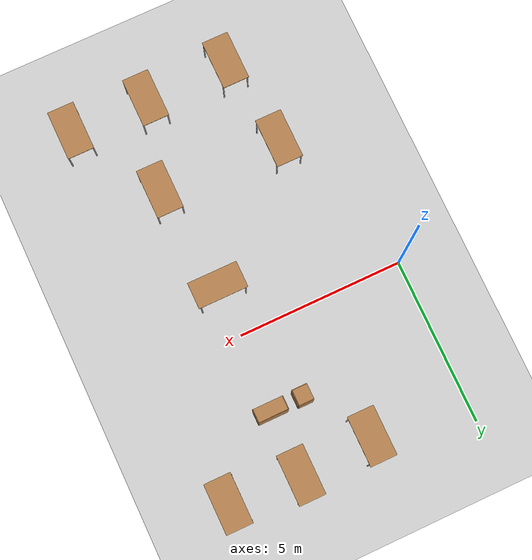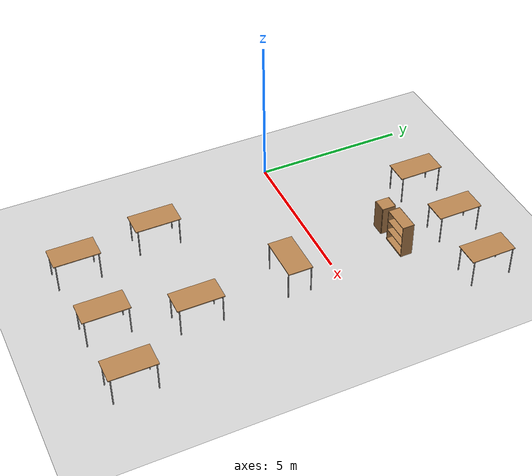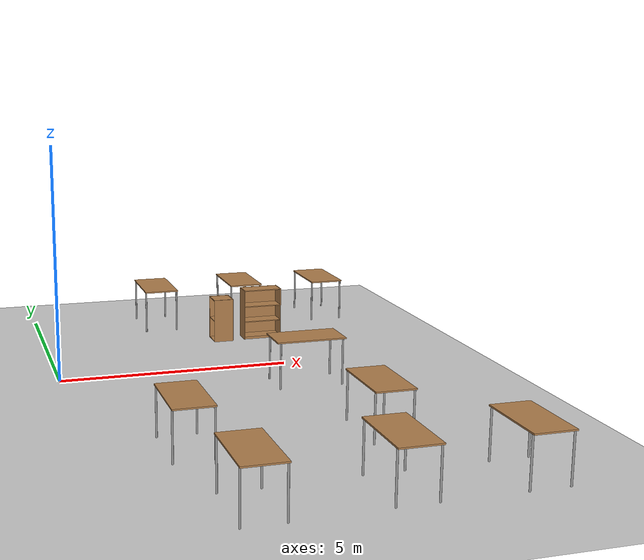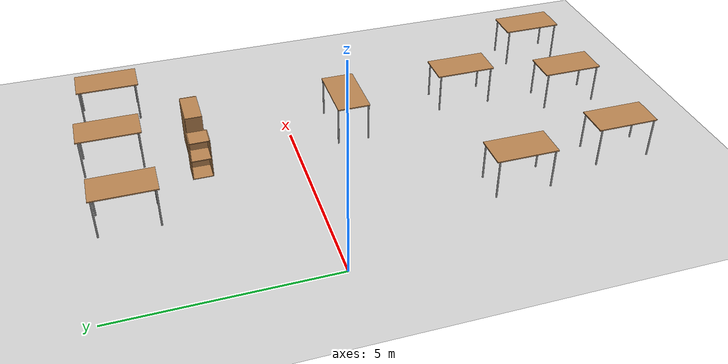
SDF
<sdf version="1.6">
 <world name="default">
  <model name="ground_plane">
   <static>1</static>
   <link name="link">
    <collision name="collision">
     <geometry><plane><normal>0 0 1</normal><size>100 100</size></plane></geometry>
     <surface>
      <contact><collide_bitmask>65535</collide_bitmask></contact>
      <friction><ode><mu>100</mu><mu2>50</mu2></ode></friction>
     </surface>
    </collision>
    <visual name="visual">
     <cast_shadows>0</cast_shadows>
     <geometry><plane><normal>0 0 1</normal><size>100 100</size></plane></geometry>
     <material>
      <script><uri>file://media/materials/scripts/gazebo.material</uri><name>Gazebo/Grey</name></script>
     </material>
    </visual>
   </link>
  </model>
  <model name="table_clone_2">
   <static>1</static>
   <link name="link">
    <collision name="surface">
     <pose>0 0 1 0 -0 0</pose>
     <geometry><box><size>1.5 0.8 0.03</size></box></geometry>
     <surface><friction><ode><mu>0.6</mu><mu2>0.6</mu2></ode></friction></surface>
    </collision>
    <visual name="visual1">
     <pose>0 0 1 0 -0 0</pose>
     <geometry><box><size>1.5 0.8 0.03</size></box></geometry>
     <material>
      <script><uri>file://media/materials/scripts/gazebo.material</uri><name>Gazebo/Wood</name></script>
     </material>
    </visual>
    <collision name="front_left_leg">
     <pose>0.68 0.38 0.5 0 -0 0</pose>
     <geometry><cylinder><radius>0.02</radius><length>1</length></cylinder></geometry>
    </collision>
    <visual name="front_left_leg">
     <pose>0.68 0.38 0.5 0 -0 0</pose>
     <geometry><cylinder><radius>0.02</radius><length>1</length></cylinder></geometry>
     <material>
      <script><uri>file://media/materials/scripts/gazebo.material</uri><name>Gazebo/Grey</name></script>
     </material>
    </visual>
    <collision name="front_right_leg">
     <pose>0.68 -0.38 0.5 0 -0 0</pose>
     <geometry><cylinder><radius>0.02</radius><length>1</length></cylinder></geometry>
    </collision>
    <visual name="front_right_leg">
     <pose>0.68 -0.38 0.5 0 -0 0</pose>
     <geometry><cylinder><radius>0.02</radius><length>1</length></cylinder></geometry>
     <material>
      <script><uri>file://media/materials/scripts/gazebo.material</uri><name>Gazebo/Grey</name></script>
     </material>
    </visual>
    <collision name="back_right_leg">
     <pose>-0.68 -0.38 0.5 0 -0 0</pose>
     <geometry><cylinder><radius>0.02</radius><length>1</length></cylinder></geometry>
    </collision>
    <visual name="back_right_leg">
     <pose>-0.68 -0.38 0.5 0 -0 0</pose>
     <geometry><cylinder><radius>0.02</radius><length>1</length></cylinder></geometry>
     <material>
      <script><uri>file://media/materials/scripts/gazebo.material</uri><name>Gazebo/Grey</name></script>
     </material>
    </visual>
    <collision name="back_left_leg">
     <pose>-0.68 0.38 0.5 0 -0 0</pose>
     <geometry><cylinder><radius>0.02</radius><length>1</length></cylinder></geometry>
    </collision>
    <visual name="back_left_leg">
     <pose>-0.68 0.38 0.5 0 -0 0</pose>
     <geometry><cylinder><radius>0.02</radius><length>1</length></cylinder></geometry>
     <material>
      <script><uri>file://media/materials/scripts/gazebo.material</uri><name>Gazebo/Grey</name></script>
     </material>
    </visual>
   </link>
   <pose>5.02257 -1.43845 0 0 -0 0</pose>
  </model>
  <model name="cabinet_clone">
   <static>1</static>
   <link name="cabinet_bottom_plate">
    <inertial>
     <pose>0 0 -1 0 -0 0</pose>
     <inertia><ixx>2.05</ixx><ixy>0</ixy><ixz>0</ixz><iyy>2.05</iyy><iyz>0</iyz><izz>2.05</izz></inertia>
     <mass>25</mass>
    </inertial>
    <collision name="cabinet_bottom_plate_geom">
     <pose>0 0 0.01 0 -0 0</pose>
     <geometry><box><size>0.45 0.45 0.02</size></box></geometry>
    </collision>
    <visual name="cabinet_bottom_plate_geom_visual">
     <pose>0 0 0.01 0 -0 0</pose>
     <geometry><box><size>0.45 0.45 0.02</size></box></geometry>
     <material>
      <script><uri>file://media/materials/scripts/gazebo.material</uri><name>Gazebo/Wood</name></script>
     </material>
    </visual>
    <collision name="cabinet_bottom_plate_geom_cabinet_back_plate">
     <pose>0.235 0 0.51 0 -0 0</pose>
     <geometry><box><size>0.02 0.45 1.02</size></box></geometry>
    </collision>
    <visual name="cabinet_bottom_plate_geom_cabinet_back_plate_visual">
     <pose>0.235 0 0.51 0 -0 0</pose>
     <geometry><box><size>0.02 0.45 1.02</size></box></geometry>
     <material>
      <script><uri>file://media/materials/scripts/gazebo.material</uri><name>Gazebo/Wood</name></script>
     </material>
    </visual>
    <collision name="cabinet_bottom_plate_geom_cabinet_left_plate">
     <pose>0 0.235 0.51 0 -0 0</pose>
     <geometry><box><size>0.45 0.02 1.02</size></box></geometry>
    </collision>
    <visual name="cabinet_bottom_plate_geom_cabinet_left_plate_visual">
     <pose>0 0.235 0.51 0 -0 0</pose>
     <geometry><box><size>0.45 0.02 1.02</size></box></geometry>
     <material>
      <script><uri>file://media/materials/scripts/gazebo.material</uri><name>Gazebo/Wood</name></script>
     </material>
    </visual>
    <collision name="cabinet_bottom_plate_geom_cabinet_middle_plate">
     <pose>0 0 0.51 0 -0 0</pose>
     <geometry><box><size>0.45 0.45 0.02</size></box></geometry>
    </collision>
    <visual name="cabinet_bottom_plate_geom_cabinet_middle_plate_visual">
     <pose>0 0 0.51 0 -0 0</pose>
     <geometry><box><size>0.45 0.45 0.02</size></box></geometry>
     <material>
      <script><uri>file://media/materials/scripts/gazebo.material</uri><name>Gazebo/Wood</name></script>
     </material>
    </visual>
    <collision name="cabinet_bottom_plate_geom_cabinet_right_plate">
     <pose>0 -0.235 0.51 0 -0 0</pose>
     <geometry><box><size>0.45 0.02 1.02</size></box></geometry>
    </collision>
    <visual name="cabinet_bottom_plate_geom_cabinet_right_plate_visual">
     <pose>0 -0.235 0.51 0 -0 0</pose>
     <geometry><box><size>0.45 0.02 1.02</size></box></geometry>
     <material>
      <script><uri>file://media/materials/scripts/gazebo.material</uri><name>Gazebo/Wood</name></script>
     </material>
    </visual>
    <collision name="cabinet_bottom_plate_geom_cabinet_top_plate">
     <pose>0 0 1.01 0 -0 0</pose>
     <geometry><box><size>0.45 0.45 0.02</size></box></geometry>
    </collision>
    <visual name="cabinet_bottom_plate_geom_cabinet_top_plate_visual">
     <pose>0 0 1.01 0 -0 0</pose>
     <geometry><box><size>0.45 0.45 0.02</size></box></geometry>
     <material>
      <script><uri>file://media/materials/scripts/gazebo.material</uri><name>Gazebo/Wood</name></script>
     </material>
    </visual>
   </link>
   <pose>4.16502 2.3262 0 0 -0 0</pose>
  </model>
  <model name="table_clone_3_clone">
   <static>1</static>
   <link name="link">
    <collision name="surface">
     <pose>0 0 1 0 -0 0</pose>
     <geometry><box><size>1.5 0.8 0.03</size></box></geometry>
     <surface><friction><ode><mu>0.6</mu><mu2>0.6</mu2></ode></friction></surface>
    </collision>
    <visual name="visual1">
     <pose>0 0 1 0 -0 0</pose>
     <geometry><box><size>1.5 0.8 0.03</size></box></geometry>
     <material>
      <script><uri>file://media/materials/scripts/gazebo.material</uri><name>Gazebo/Wood</name></script>
     </material>
    </visual>
    <collision name="front_left_leg">
     <pose>0.68 0.38 0.5 0 -0 0</pose>
     <geometry><cylinder><radius>0.02</radius><length>1</length></cylinder></geometry>
    </collision>
    <visual name="front_left_leg">
     <pose>0.68 0.38 0.5 0 -0 0</pose>
     <geometry><cylinder><radius>0.02</radius><length>1</length></cylinder></geometry>
     <material>
      <script><uri>file://media/materials/scripts/gazebo.material</uri><name>Gazebo/Grey</name></script>
     </material>
    </visual>
    <collision name="front_right_leg">
     <pose>0.68 -0.38 0.5 0 -0 0</pose>
     <geometry><cylinder><radius>0.02</radius><length>1</length></cylinder></geometry>
    </collision>
    <visual name="front_right_leg">
     <pose>0.68 -0.38 0.5 0 -0 0</pose>
     <geometry><cylinder><radius>0.02</radius><length>1</length></cylinder></geometry>
     <material>
      <script><uri>file://media/materials/scripts/gazebo.material</uri><name>Gazebo/Grey</name></script>
     </material>
    </visual>
    <collision name="back_right_leg">
     <pose>-0.68 -0.38 0.5 0 -0 0</pose>
     <geometry><cylinder><radius>0.02</radius><length>1</length></cylinder></geometry>
    </collision>
    <visual name="back_right_leg">
     <pose>-0.68 -0.38 0.5 0 -0 0</pose>
     <geometry><cylinder><radius>0.02</radius><length>1</length></cylinder></geometry>
     <material>
      <script><uri>file://media/materials/scripts/gazebo.material</uri><name>Gazebo/Grey</name></script>
     </material>
    </visual>
    <collision name="back_left_leg">
     <pose>-0.68 0.38 0.5 0 -0 0</pose>
     <geometry><cylinder><radius>0.02</radius><length>1</length></cylinder></geometry>
    </collision>
    <visual name="back_left_leg">
     <pose>-0.68 0.38 0.5 0 -0 0</pose>
     <geometry><cylinder><radius>0.02</radius><length>1</length></cylinder></geometry>
     <material>
      <script><uri>file://media/materials/scripts/gazebo.material</uri><name>Gazebo/Grey</name></script>
     </material>
    </visual>
   </link>
   <pose>5.36491 -4.63168 0 0 0 -1.56936</pose>
  </model>
  <model name="table_clone_3_clone_clone">
   <static>1</static>
   <link name="link">
    <collision name="surface">
     <pose>0 0 1 0 -0 0</pose>
     <geometry><box><size>1.5 0.8 0.03</size></box></geometry>
     <surface><friction><ode><mu>0.6</mu><mu2>0.6</mu2></ode></friction></surface>
    </collision>
    <visual name="visual1">
     <pose>0 0 1 0 -0 0</pose>
     <geometry><box><size>1.5 0.8 0.03</size></box></geometry>
     <material>
      <script><uri>file://media/materials/scripts/gazebo.material</uri><name>Gazebo/Wood</name></script>
     </material>
    </visual>
    <collision name="front_left_leg">
     <pose>0.68 0.38 0.5 0 -0 0</pose>
     <geometry><cylinder><radius>0.02</radius><length>1</length></cylinder></geometry>
    </collision>
    <visual name="front_left_leg">
     <pose>0.68 0.38 0.5 0 -0 0</pose>
     <geometry><cylinder><radius>0.02</radius><length>1</length></cylinder></geometry>
     <material>
      <script><uri>file://media/materials/scripts/gazebo.material</uri><name>Gazebo/Grey</name></script>
     </material>
    </visual>
    <collision name="front_right_leg">
     <pose>0.68 -0.38 0.5 0 -0 0</pose>
     <geometry><cylinder><radius>0.02</radius><length>1</length></cylinder></geometry>
    </collision>
    <visual name="front_right_leg">
     <pose>0.68 -0.38 0.5 0 -0 0</pose>
     <geometry><cylinder><radius>0.02</radius><length>1</length></cylinder></geometry>
     <material>
      <script><uri>file://media/materials/scripts/gazebo.material</uri><name>Gazebo/Grey</name></script>
     </material>
    </visual>
    <collision name="back_right_leg">
     <pose>-0.68 -0.38 0.5 0 -0 0</pose>
     <geometry><cylinder><radius>0.02</radius><length>1</length></cylinder></geometry>
    </collision>
    <visual name="back_right_leg">
     <pose>-0.68 -0.38 0.5 0 -0 0</pose>
     <geometry><cylinder><radius>0.02</radius><length>1</length></cylinder></geometry>
     <material>
      <script><uri>file://media/materials/scripts/gazebo.material</uri><name>Gazebo/Grey</name></script>
     </material>
    </visual>
    <collision name="back_left_leg">
     <pose>-0.68 0.38 0.5 0 -0 0</pose>
     <geometry><cylinder><radius>0.02</radius><length>1</length></cylinder></geometry>
    </collision>
    <visual name="back_left_leg">
     <pose>-0.68 0.38 0.5 0 -0 0</pose>
     <geometry><cylinder><radius>0.02</radius><length>1</length></cylinder></geometry>
     <material>
      <script><uri>file://media/materials/scripts/gazebo.material</uri><name>Gazebo/Grey</name></script>
     </material>
    </visual>
   </link>
   <pose>1.68098 -4.56257 0 0 0 -1.56936</pose>
  </model>
  <model name="table_clone_3_clone_0">
   <static>1</static>
   <link name="link">
    <collision name="surface">
     <pose>0 0 1 0 -0 0</pose>
     <geometry><box><size>1.5 0.8 0.03</size></box></geometry>
     <surface><friction><ode><mu>0.6</mu><mu2>0.6</mu2></ode></friction></surface>
    </collision>
    <visual name="visual1">
     <pose>0 0 1 0 -0 0</pose>
     <geometry><box><size>1.5 0.8 0.03</size></box></geometry>
     <material>
      <script><uri>file://media/materials/scripts/gazebo.material</uri><name>Gazebo/Wood</name></script>
     </material>
    </visual>
    <collision name="front_left_leg">
     <pose>0.68 0.38 0.5 0 -0 0</pose>
     <geometry><cylinder><radius>0.02</radius><length>1</length></cylinder></geometry>
    </collision>
    <visual name="front_left_leg">
     <pose>0.68 0.38 0.5 0 -0 0</pose>
     <geometry><cylinder><radius>0.02</radius><length>1</length></cylinder></geometry>
     <material>
      <script><uri>file://media/materials/scripts/gazebo.material</uri><name>Gazebo/Grey</name></script>
     </material>
    </visual>
    <collision name="front_right_leg">
     <pose>0.68 -0.38 0.5 0 -0 0</pose>
     <geometry><cylinder><radius>0.02</radius><length>1</length></cylinder></geometry>
    </collision>
    <visual name="front_right_leg">
     <pose>0.68 -0.38 0.5 0 -0 0</pose>
     <geometry><cylinder><radius>0.02</radius><length>1</length></cylinder></geometry>
     <material>
      <script><uri>file://media/materials/scripts/gazebo.material</uri><name>Gazebo/Grey</name></script>
     </material>
    </visual>
    <collision name="back_right_leg">
     <pose>-0.68 -0.38 0.5 0 -0 0</pose>
     <geometry><cylinder><radius>0.02</radius><length>1</length></cylinder></geometry>
    </collision>
    <visual name="back_right_leg">
     <pose>-0.68 -0.38 0.5 0 -0 0</pose>
     <geometry><cylinder><radius>0.02</radius><length>1</length></cylinder></geometry>
     <material>
      <script><uri>file://media/materials/scripts/gazebo.material</uri><name>Gazebo/Grey</name></script>
     </material>
    </visual>
    <collision name="back_left_leg">
     <pose>-0.68 0.38 0.5 0 -0 0</pose>
     <geometry><cylinder><radius>0.02</radius><length>1</length></cylinder></geometry>
    </collision>
    <visual name="back_left_leg">
     <pose>-0.68 0.38 0.5 0 -0 0</pose>
     <geometry><cylinder><radius>0.02</radius><length>1</length></cylinder></geometry>
     <material>
      <script><uri>file://media/materials/scripts/gazebo.material</uri><name>Gazebo/Grey</name></script>
     </material>
    </visual>
   </link>
   <pose>5.14332 4.27678 0 0 0 -1.56936</pose>
  </model>
  <model name="table_clone_3_clone_1">
   <static>1</static>
   <link name="link">
    <collision name="surface">
     <pose>0 0 1 0 -0 0</pose>
     <geometry><box><size>1.5 0.8 0.03</size></box></geometry>
     <surface><friction><ode><mu>0.6</mu><mu2>0.6</mu2></ode></friction></surface>
    </collision>
    <visual name="visual1">
     <pose>0 0 1 0 -0 0</pose>
     <geometry><box><size>1.5 0.8 0.03</size></box></geometry>
     <material>
      <script><uri>file://media/materials/scripts/gazebo.material</uri><name>Gazebo/Wood</name></script>
     </material>
    </visual>
    <collision name="front_left_leg">
     <pose>0.68 0.38 0.5 0 -0 0</pose>
     <geometry><cylinder><radius>0.02</radius><length>1</length></cylinder></geometry>
    </collision>
    <visual name="front_left_leg">
     <pose>0.68 0.38 0.5 0 -0 0</pose>
     <geometry><cylinder><radius>0.02</radius><length>1</length></cylinder></geometry>
     <material>
      <script><uri>file://media/materials/scripts/gazebo.material</uri><name>Gazebo/Grey</name></script>
     </material>
    </visual>
    <collision name="front_right_leg">
     <pose>0.68 -0.38 0.5 0 -0 0</pose>
     <geometry><cylinder><radius>0.02</radius><length>1</length></cylinder></geometry>
    </collision>
    <visual name="front_right_leg">
     <pose>0.68 -0.38 0.5 0 -0 0</pose>
     <geometry><cylinder><radius>0.02</radius><length>1</length></cylinder></geometry>
     <material>
      <script><uri>file://media/materials/scripts/gazebo.material</uri><name>Gazebo/Grey</name></script>
     </material>
    </visual>
    <collision name="back_right_leg">
     <pose>-0.68 -0.38 0.5 0 -0 0</pose>
     <geometry><cylinder><radius>0.02</radius><length>1</length></cylinder></geometry>
    </collision>
    <visual name="back_right_leg">
     <pose>-0.68 -0.38 0.5 0 -0 0</pose>
     <geometry><cylinder><radius>0.02</radius><length>1</length></cylinder></geometry>
     <material>
      <script><uri>file://media/materials/scripts/gazebo.material</uri><name>Gazebo/Grey</name></script>
     </material>
    </visual>
    <collision name="back_left_leg">
     <pose>-0.68 0.38 0.5 0 -0 0</pose>
     <geometry><cylinder><radius>0.02</radius><length>1</length></cylinder></geometry>
    </collision>
    <visual name="back_left_leg">
     <pose>-0.68 0.38 0.5 0 -0 0</pose>
     <geometry><cylinder><radius>0.02</radius><length>1</length></cylinder></geometry>
     <material>
      <script><uri>file://media/materials/scripts/gazebo.material</uri><name>Gazebo/Grey</name></script>
     </material>
    </visual>
   </link>
   <pose>7.25069 4.14371 0 0 0 -1.56936</pose>
  </model>
  <model name="table_clone_3_clone_2">
   <static>1</static>
   <link name="link">
    <collision name="surface">
     <pose>0 0 1 0 -0 0</pose>
     <geometry><box><size>1.5 0.8 0.03</size></box></geometry>
     <surface><friction><ode><mu>0.6</mu><mu2>0.6</mu2></ode></friction></surface>
    </collision>
    <visual name="visual1">
     <pose>0 0 1 0 -0 0</pose>
     <geometry><box><size>1.5 0.8 0.03</size></box></geometry>
     <material>
      <script><uri>file://media/materials/scripts/gazebo.material</uri><name>Gazebo/Wood</name></script>
     </material>
    </visual>
    <collision name="front_left_leg">
     <pose>0.68 0.38 0.5 0 -0 0</pose>
     <geometry><cylinder><radius>0.02</radius><length>1</length></cylinder></geometry>
    </collision>
    <visual name="front_left_leg">
     <pose>0.68 0.38 0.5 0 -0 0</pose>
     <geometry><cylinder><radius>0.02</radius><length>1</length></cylinder></geometry>
     <material>
      <script><uri>file://media/materials/scripts/gazebo.material</uri><name>Gazebo/Grey</name></script>
     </material>
    </visual>
    <collision name="front_right_leg">
     <pose>0.68 -0.38 0.5 0 -0 0</pose>
     <geometry><cylinder><radius>0.02</radius><length>1</length></cylinder></geometry>
    </collision>
    <visual name="front_right_leg">
     <pose>0.68 -0.38 0.5 0 -0 0</pose>
     <geometry><cylinder><radius>0.02</radius><length>1</length></cylinder></geometry>
     <material>
      <script><uri>file://media/materials/scripts/gazebo.material</uri><name>Gazebo/Grey</name></script>
     </material>
    </visual>
    <collision name="back_right_leg">
     <pose>-0.68 -0.38 0.5 0 -0 0</pose>
     <geometry><cylinder><radius>0.02</radius><length>1</length></cylinder></geometry>
    </collision>
    <visual name="back_right_leg">
     <pose>-0.68 -0.38 0.5 0 -0 0</pose>
     <geometry><cylinder><radius>0.02</radius><length>1</length></cylinder></geometry>
     <material>
      <script><uri>file://media/materials/scripts/gazebo.material</uri><name>Gazebo/Grey</name></script>
     </material>
    </visual>
    <collision name="back_left_leg">
     <pose>-0.68 0.38 0.5 0 -0 0</pose>
     <geometry><cylinder><radius>0.02</radius><length>1</length></cylinder></geometry>
    </collision>
    <visual name="back_left_leg">
     <pose>-0.68 0.38 0.5 0 -0 0</pose>
     <geometry><cylinder><radius>0.02</radius><length>1</length></cylinder></geometry>
     <material>
      <script><uri>file://media/materials/scripts/gazebo.material</uri><name>Gazebo/Grey</name></script>
     </material>
    </visual>
   </link>
   <pose>2.93931 4.13998 0 0 0 -1.56936</pose>
  </model>
  <model name="bookshelf_clone">
   <static>1</static>
   <link name="link">
    <inertial><mass>1</mass></inertial>
    <collision name="back">
     <pose>0 0.005 0.6 0 -0 0</pose>
     <geometry><box><size>0.9 0.01 1.2</size></box></geometry>
    </collision>
    <visual name="visual1">
     <pose>0 0.005 0.6 0 -0 0</pose>
     <geometry><box><size>0.9 0.01 1.2</size></box></geometry>
     <material>
      <script><uri>file://media/materials/scripts/gazebo.material</uri><name>Gazebo/Wood</name></script>
     </material>
    </visual>
    <collision name="left_side">
     <pose>0.45 -0.195 0.6 0 -0 0</pose>
     <geometry><box><size>0.02 0.4 1.2</size></box></geometry>
    </collision>
    <visual name="visual2">
     <pose>0.45 -0.195 0.6 0 -0 0</pose>
     <geometry><box><size>0.02 0.4 1.2</size></box></geometry>
     <material>
      <script><uri>file://media/materials/scripts/gazebo.material</uri><name>Gazebo/Wood</name></script>
     </material>
    </visual>
    <collision name="right_side">
     <pose>-0.45 -0.195 0.6 0 -0 0</pose>
     <geometry><box><size>0.02 0.4 1.2</size></box></geometry>
    </collision>
    <visual name="visual3">
     <pose>-0.45 -0.195 0.6 0 -0 0</pose>
     <geometry><box><size>0.02 0.4 1.2</size></box></geometry>
     <material>
      <script><uri>file://media/materials/scripts/gazebo.material</uri><name>Gazebo/Wood</name></script>
     </material>
    </visual>
    <collision name="bottom">
     <pose>0 -0.195 0.03 0 -0 0</pose>
     <geometry><box><size>0.88 0.4 0.06</size></box></geometry>
    </collision>
    <visual name="visual4">
     <pose>0 -0.195 0.03 0 -0 0</pose>
     <geometry><box><size>0.88 0.4 0.06</size></box></geometry>
     <material>
      <script><uri>file://media/materials/scripts/gazebo.material</uri><name>Gazebo/Wood</name></script>
     </material>
    </visual>
    <collision name="top">
     <pose>0 -0.195 1.19 0 -0 0</pose>
     <geometry><box><size>0.88 0.4 0.02</size></box></geometry>
    </collision>
    <visual name="visual5">
     <pose>0 -0.195 1.19 0 -0 0</pose>
     <geometry><box><size>0.88 0.4 0.02</size></box></geometry>
     <material>
      <script><uri>file://media/materials/scripts/gazebo.material</uri><name>Gazebo/Wood</name></script>
     </material>
    </visual>
    <collision name="low_shelf">
     <pose>0 -0.195 0.43 0 -0 0</pose>
     <geometry><box><size>0.88 0.4 0.02</size></box></geometry>
    </collision>
    <visual name="visual6">
     <pose>0 -0.195 0.43 0 -0 0</pose>
     <geometry><box><size>0.88 0.4 0.02</size></box></geometry>
     <material>
      <script><uri>file://media/materials/scripts/gazebo.material</uri><name>Gazebo/Wood</name></script>
     </material>
    </visual>
    <collision name="high_shelf">
     <pose>0 -0.195 0.8 0 -0 0</pose>
     <geometry><box><size>0.88 0.4 0.02</size></box></geometry>
    </collision>
    <visual name="visual7">
     <pose>0 -0.195 0.8 0 -0 0</pose>
     <geometry><box><size>0.88 0.4 0.02</size></box></geometry>
     <material>
      <script><uri>file://media/materials/scripts/gazebo.material</uri><name>Gazebo/Wood</name></script>
     </material>
    </visual>
   </link>
   <pose>5.14937 2.522 0 0 -0 0</pose>
  </model>
  <model name="table_clone_3_clone_clone_0">
   <static>1</static>
   <link name="link">
    <collision name="surface">
     <pose>0 0 1 0 -0 0</pose>
     <geometry><box><size>1.5 0.8 0.03</size></box></geometry>
     <surface><friction><ode><mu>0.6</mu><mu2>0.6</mu2></ode></friction></surface>
    </collision>
    <visual name="visual1">
     <pose>0 0 1 0 -0 0</pose>
     <geometry><box><size>1.5 0.8 0.03</size></box></geometry>
     <material>
      <script><uri>file://media/materials/scripts/gazebo.material</uri><name>Gazebo/Wood</name></script>
     </material>
    </visual>
    <collision name="front_left_leg">
     <pose>0.68 0.38 0.5 0 -0 0</pose>
     <geometry><cylinder><radius>0.02</radius><length>1</length></cylinder></geometry>
    </collision>
    <visual name="front_left_leg">
     <pose>0.68 0.38 0.5 0 -0 0</pose>
     <geometry><cylinder><radius>0.02</radius><length>1</length></cylinder></geometry>
     <material>
      <script><uri>file://media/materials/scripts/gazebo.material</uri><name>Gazebo/Grey</name></script>
     </material>
    </visual>
    <collision name="front_right_leg">
     <pose>0.68 -0.38 0.5 0 -0 0</pose>
     <geometry><cylinder><radius>0.02</radius><length>1</length></cylinder></geometry>
    </collision>
    <visual name="front_right_leg">
     <pose>0.68 -0.38 0.5 0 -0 0</pose>
     <geometry><cylinder><radius>0.02</radius><length>1</length></cylinder></geometry>
     <material>
      <script><uri>file://media/materials/scripts/gazebo.material</uri><name>Gazebo/Grey</name></script>
     </material>
    </visual>
    <collision name="back_right_leg">
     <pose>-0.68 -0.38 0.5 0 -0 0</pose>
     <geometry><cylinder><radius>0.02</radius><length>1</length></cylinder></geometry>
    </collision>
    <visual name="back_right_leg">
     <pose>-0.68 -0.38 0.5 0 -0 0</pose>
     <geometry><cylinder><radius>0.02</radius><length>1</length></cylinder></geometry>
     <material>
      <script><uri>file://media/materials/scripts/gazebo.material</uri><name>Gazebo/Grey</name></script>
     </material>
    </visual>
    <collision name="back_left_leg">
     <pose>-0.68 0.38 0.5 0 -0 0</pose>
     <geometry><cylinder><radius>0.02</radius><length>1</length></cylinder></geometry>
    </collision>
    <visual name="back_left_leg">
     <pose>-0.68 0.38 0.5 0 -0 0</pose>
     <geometry><cylinder><radius>0.02</radius><length>1</length></cylinder></geometry>
     <material>
      <script><uri>file://media/materials/scripts/gazebo.material</uri><name>Gazebo/Grey</name></script>
     </material>
    </visual>
   </link>
   <pose>4.63895 -7.26023 0 0 0 -1.56936</pose>
  </model>
  <model name="table_clone_3_clone_clone_1">
   <static>1</static>
   <link name="link">
    <collision name="surface">
     <pose>0 0 1 0 -0 0</pose>
     <geometry><box><size>1.5 0.8 0.03</size></box></geometry>
     <surface><friction><ode><mu>0.6</mu><mu2>0.6</mu2></ode></friction></surface>
    </collision>
    <visual name="visual1">
     <pose>0 0 1 0 -0 0</pose>
     <geometry><box><size>1.5 0.8 0.03</size></box></geometry>
     <material>
      <script><uri>file://media/materials/scripts/gazebo.material</uri><name>Gazebo/Wood</name></script>
     </material>
    </visual>
    <collision name="front_left_leg">
     <pose>0.68 0.38 0.5 0 -0 0</pose>
     <geometry><cylinder><radius>0.02</radius><length>1</length></cylinder></geometry>
    </collision>
    <visual name="front_left_leg">
     <pose>0.68 0.38 0.5 0 -0 0</pose>
     <geometry><cylinder><radius>0.02</radius><length>1</length></cylinder></geometry>
     <material>
      <script><uri>file://media/materials/scripts/gazebo.material</uri><name>Gazebo/Grey</name></script>
     </material>
    </visual>
    <collision name="front_right_leg">
     <pose>0.68 -0.38 0.5 0 -0 0</pose>
     <geometry><cylinder><radius>0.02</radius><length>1</length></cylinder></geometry>
    </collision>
    <visual name="front_right_leg">
     <pose>0.68 -0.38 0.5 0 -0 0</pose>
     <geometry><cylinder><radius>0.02</radius><length>1</length></cylinder></geometry>
     <material>
      <script><uri>file://media/materials/scripts/gazebo.material</uri><name>Gazebo/Grey</name></script>
     </material>
    </visual>
    <collision name="back_right_leg">
     <pose>-0.68 -0.38 0.5 0 -0 0</pose>
     <geometry><cylinder><radius>0.02</radius><length>1</length></cylinder></geometry>
    </collision>
    <visual name="back_right_leg">
     <pose>-0.68 -0.38 0.5 0 -0 0</pose>
     <geometry><cylinder><radius>0.02</radius><length>1</length></cylinder></geometry>
     <material>
      <script><uri>file://media/materials/scripts/gazebo.material</uri><name>Gazebo/Grey</name></script>
     </material>
    </visual>
    <collision name="back_left_leg">
     <pose>-0.68 0.38 0.5 0 -0 0</pose>
     <geometry><cylinder><radius>0.02</radius><length>1</length></cylinder></geometry>
    </collision>
    <visual name="back_left_leg">
     <pose>-0.68 0.38 0.5 0 -0 0</pose>
     <geometry><cylinder><radius>0.02</radius><length>1</length></cylinder></geometry>
     <material>
      <script><uri>file://media/materials/scripts/gazebo.material</uri><name>Gazebo/Grey</name></script>
     </material>
    </visual>
   </link>
   <pose>6.9702 -7.27088 0 0 0 -1.56936</pose>
  </model>
  <model name="table_clone_3_clone_clone_2">
   <static>1</static>
   <link name="link">
    <collision name="surface">
     <pose>0 0 1 0 -0 0</pose>
     <geometry><box><size>1.5 0.8 0.03</size></box></geometry>
     <surface><friction><ode><mu>0.6</mu><mu2>0.6</mu2></ode></friction></surface>
    </collision>
    <visual name="visual1">
     <pose>0 0 1 0 -0 0</pose>
     <geometry><box><size>1.5 0.8 0.03</size></box></geometry>
     <material>
      <script><uri>file://media/materials/scripts/gazebo.material</uri><name>Gazebo/Wood</name></script>
     </material>
    </visual>
    <collision name="front_left_leg">
     <pose>0.68 0.38 0.5 0 -0 0</pose>
     <geometry><cylinder><radius>0.02</radius><length>1</length></cylinder></geometry>
    </collision>
    <visual name="front_left_leg">
     <pose>0.68 0.38 0.5 0 -0 0</pose>
     <geometry><cylinder><radius>0.02</radius><length>1</length></cylinder></geometry>
     <material>
      <script><uri>file://media/materials/scripts/gazebo.material</uri><name>Gazebo/Grey</name></script>
     </material>
    </visual>
    <collision name="front_right_leg">
     <pose>0.68 -0.38 0.5 0 -0 0</pose>
     <geometry><cylinder><radius>0.02</radius><length>1</length></cylinder></geometry>
    </collision>
    <visual name="front_right_leg">
     <pose>0.68 -0.38 0.5 0 -0 0</pose>
     <geometry><cylinder><radius>0.02</radius><length>1</length></cylinder></geometry>
     <material>
      <script><uri>file://media/materials/scripts/gazebo.material</uri><name>Gazebo/Grey</name></script>
     </material>
    </visual>
    <collision name="back_right_leg">
     <pose>-0.68 -0.38 0.5 0 -0 0</pose>
     <geometry><cylinder><radius>0.02</radius><length>1</length></cylinder></geometry>
    </collision>
    <visual name="back_right_leg">
     <pose>-0.68 -0.38 0.5 0 -0 0</pose>
     <geometry><cylinder><radius>0.02</radius><length>1</length></cylinder></geometry>
     <material>
      <script><uri>file://media/materials/scripts/gazebo.material</uri><name>Gazebo/Grey</name></script>
     </material>
    </visual>
    <collision name="back_left_leg">
     <pose>-0.68 0.38 0.5 0 -0 0</pose>
     <geometry><cylinder><radius>0.02</radius><length>1</length></cylinder></geometry>
    </collision>
    <visual name="back_left_leg">
     <pose>-0.68 0.38 0.5 0 -0 0</pose>
     <geometry><cylinder><radius>0.02</radius><length>1</length></cylinder></geometry>
     <material>
      <script><uri>file://media/materials/scripts/gazebo.material</uri><name>Gazebo/Grey</name></script>
     </material>
    </visual>
   </link>
   <pose>2.09446 -7.32643 0 0 0 -1.56936</pose>
  </model>
 </world>
</sdf>
